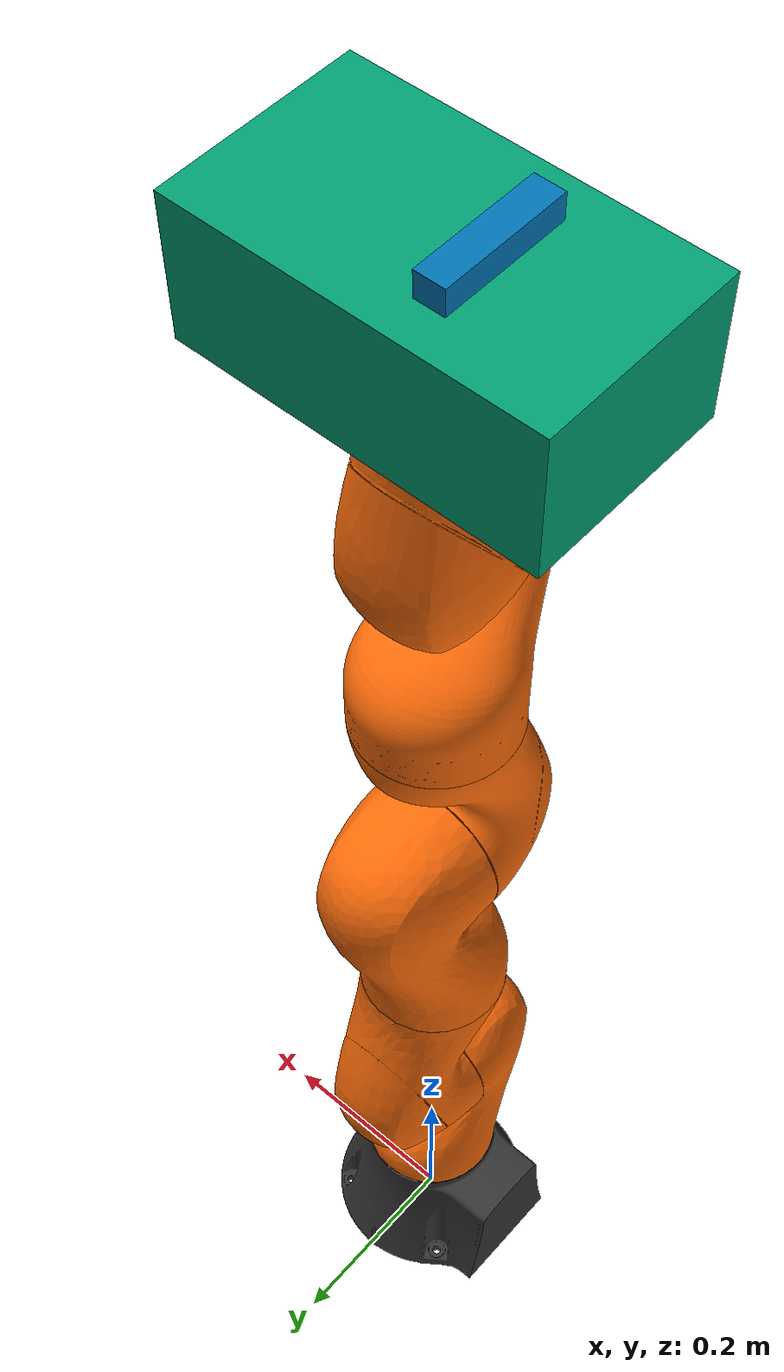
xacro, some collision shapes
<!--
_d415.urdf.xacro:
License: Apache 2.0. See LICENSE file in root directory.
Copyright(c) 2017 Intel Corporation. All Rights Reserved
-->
<?xml version="1.0"?>
<robot name="iiwa7" xmlns:xacro="http://www.ros.org/wiki/xacro">
  <xacro:property name="pi" value="3.1415926535897931"/>

  <!-- Import Rviz colors -->
  <xacro:include filename="$(find iiwa_description)/urdf/materials.xacro" />
  <!--Import the lbr iiwa macro -->
  <xacro:include filename="$(find iiwa_description)/urdf/iiwa7.xacro"/>
  <xacro:include filename="$(find tf_virtual)/urdf/_d415.urdf.xacro"/>

  <xacro:arg name="hardware_interface" default="PositionJointInterface"/>
  <xacro:arg name="robot_name" default="iiwa"/>
  <xacro:arg name="origin_xyz" default="0 0 0"/>
  <xacro:arg name="origin_rpy" default="0 0 0"/>

  <!-- Fix to world just for testing -->
  <link name="world"/>

  <!--iiwa-->
  <xacro:iiwa7 hardware_interface="$(arg hardware_interface)" robot_name="$(arg robot_name)" parent="world">
    <origin xyz="$(arg origin_xyz)" rpy="$(arg origin_rpy)" />
  </xacro:iiwa7>

<link name="toolbox">
  <visual>
    <geometry>
      <box size="0.280 0.160 0.107"/>
    </geometry>
  </visual>
  <collision>
  <geometry>
      <box size="0.280 0.160 0.107"/>
    </geometry>
    </collision>
</link>

<joint name="toolbox_joint" type="fixed">
  <origin xyz="0 0 0.0475" rpy="0 0 0"/>
  <parent link="iiwa_link_ee"/>
  <child link="toolbox" />
</joint>

  <xacro:sensor_d415 parent="$(arg robot_name)_link_7">
    <origin xyz="-0.045 0 0.155" rpy="${pi} -${pi/2} 0"/>
  </xacro:sensor_d415>

</robot>

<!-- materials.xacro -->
<robot>

  <material name="Black">
    <color rgba="0.0 0.0 0.0 1.0"/>
  </material>

  <material name="Blue">
    <color rgba="0.0 0.0 0.8 1.0"/>
  </material>

  <material name="Green">
    <color rgba="0.0 0.8 0.0 1.0"/>
  </material>

  <material name="Grey">
    <color rgba="0.2 0.2 0.2 1.0"/>
  </material>

  <material name="Orange">
    <color rgba="${255/255} ${108/255} ${10/255} 1.0"/>
  </material>

  <material name="Brown">
    <color rgba="${222/255} ${207/255} ${195/255} 1.0"/>
  </material>

  <material name="Red">
    <color rgba="0.8 0.0 0.0 1.0"/>
  </material>

  <material name="White">
    <color rgba="1.0 1.0 1.0 1.0"/>
  </material>

</robot>

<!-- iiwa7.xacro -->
<robot xmlns:xacro="http://www.ros.org/wiki/xacro">

  <!-- Import all Gazebo-customization elements, including Gazebo colors -->
  <xacro:include filename="$(find iiwa_description)/urdf/iiwa.gazebo.xacro" />
  <!-- Import Transmissions -->
  <xacro:include filename="$(find iiwa_description)/urdf/iiwa.transmission.xacro" />
  <!-- Include Utilities -->
  <xacro:include filename="$(find iiwa_description)/urdf/utilities.xacro" />

  <!-- some constants -->
  <xacro:property name="safety_controller_k_pos" value="100" />
  <xacro:property name="safety_controller_k_vel" value="2" />
  <xacro:property name="joint_damping" value="0.5" />
  <xacro:property name="max_effort" value="300"/>
  <xacro:property name="max_velocity" value="10"/>

  <xacro:macro name="iiwa7" params="parent hardware_interface robot_name *origin">

    <!--joint between {parent} and link_0-->
    <joint name="${parent}_${robot_name}_joint" type="fixed">
      <xacro:insert_block name="origin"/>
      <parent link="${parent}"/>
      <child link="${robot_name}_link_0"/>
    </joint>

    <link name="${robot_name}_link_0">
      <inertial>
        <origin xyz="-0.1 0 0.07" rpy="0 0 0"/>
        <mass value="5"/>
        <inertia ixx="0.05"  ixy="0"  ixz="0" iyy="0.06" iyz="0" izz="0.03" />
      </inertial>

      <visual>
        <origin xyz="0 0 0" rpy="0 0 0"/>
        <geometry>
          <mesh filename="package://iiwa_description/meshes/iiwa7/visual/link_0.stl"/>
        </geometry>
        <material name="Grey"/>
      </visual>

      <collision>
        <origin xyz="0 0 0" rpy="0 0 0"/>
        <geometry>
          <mesh filename="package://iiwa_description/meshes/iiwa7/collision/link_0.stl"/>
        </geometry>
      </collision>

    </link>

    <!-- joint between link_0 and link_1 -->
    <joint name="${robot_name}_joint_1" type="revolute">
      <parent link="${robot_name}_link_0"/>
      <child link="${robot_name}_link_1"/>
      <origin xyz="0 0 0.15" rpy="0 0 0"/>
      <axis xyz="0 0 1"/>
      <limit lower="${-170 * PI / 180}" upper="${170 * PI / 180}"
             effort="${max_effort}" velocity="${max_velocity}" />
      <safety_controller soft_lower_limit="${-168 * PI / 180}"
                         soft_upper_limit="${168 * PI / 180}"
                         k_position="${safety_controller_k_pos}"
                         k_velocity="${safety_controller_k_vel}"/>
      <dynamics damping="${joint_damping}"/>
    </joint>

    <link name="${robot_name}_link_1">
      <inertial>
        <origin xyz="0 -0.03 0.12" rpy="0 0 0"/>
        <mass value="3.4525"/>
        <inertia ixx="0.02183"  ixy="0"  ixz="0" iyy="0.007703" iyz="-0.003887" izz="0.02083" />
      </inertial>
      <visual>
        <origin xyz="0 0 0.0075" rpy="0 0 0"/>
        <geometry>
          <mesh filename="package://iiwa_description/meshes/iiwa7/visual/link_1.stl"/>
        </geometry>
        <material name="Orange"/>
      </visual>
      <collision>
        <origin xyz="0 0 0.0075" rpy="0 0 0"/>
        <geometry>
          <mesh filename="package://iiwa_description/meshes/iiwa7/collision/link_1.stl"/>
        </geometry>
      </collision>
    </link>

    <joint name="${robot_name}_joint_2" type="revolute">
      <parent link="${robot_name}_link_1"/>
      <child link="${robot_name}_link_2"/>
      <origin xyz="0 0 0.19" rpy="${PI / 2}   0 ${PI}"/>
      <axis xyz="0 0 1"/>
      <limit lower="${-120 * PI / 180}" upper="${120 * PI / 180}"
             effort="${max_effort}" velocity="${max_velocity}" />
      <safety_controller soft_lower_limit="${-118 * PI / 180}"
                         soft_upper_limit="${118 * PI / 180}"
                         k_position="${safety_controller_k_pos}"
                         k_velocity="${safety_controller_k_vel}"/>
      <dynamics damping="${joint_damping}"/>
    </joint>

    <link name="${robot_name}_link_2">
      <inertial>
        <origin xyz="0.0003 0.059 0.042" rpy="0 0 0"/>
        <mass value="3.4821"/>
        <inertia ixx="0.02076"  ixy="0"  ixz="-0.003626" iyy="0.02179" iyz="0" izz="0.00779" />
      </inertial>
      <visual>
        <origin xyz="0 0 0" rpy="0 0 0"/>
        <geometry>
          <mesh filename="package://iiwa_description/meshes/iiwa7/visual/link_2.stl"/>
        </geometry>
        <material name="Orange"/>
      </visual>

      <collision>
        <origin xyz="0 0 0" rpy="0 0 0"/>
        <geometry>
          <mesh filename="package://iiwa_description/meshes/iiwa7/collision/link_2.stl"/>
        </geometry>
      </collision>
    </link>

    <joint name="${robot_name}_joint_3" type="revolute">
      <parent link="${robot_name}_link_2"/>
      <child link="${robot_name}_link_3"/>
      <origin xyz="0 0.21 0" rpy="${PI / 2} 0 ${PI}"/>
      <axis xyz="0 0 1"/>
      <limit lower="${-170 * PI / 180}" upper="${170 * PI / 180}"
             effort="${max_effort}" velocity="${max_velocity}" />
      <safety_controller soft_lower_limit="${-168 * PI / 180}"
                         soft_upper_limit="${168 * PI / 180}"
                         k_position="${safety_controller_k_pos}"
                         k_velocity="${safety_controller_k_vel}"/>
      <dynamics damping="${joint_damping}"/>
    </joint>

    <link name="${robot_name}_link_3">
      <inertial>
        <origin xyz="0 0.03 0.13" rpy="0 0 0"/>
        <mass value="4.05623"/>
        <inertia ixx="0.03204"  ixy="0"  ixz="0" iyy="0.00972" iyz="0.006227" izz="0.03042" />
      </inertial>

      <visual>
        <origin xyz="0 0 -0.026" rpy="0 0 0"/>
        <geometry>
          <mesh filename="package://iiwa_description/meshes/iiwa7/visual/link_3.stl"/>
        </geometry>
        <material name="Orange"/>
      </visual>

      <collision>
        <origin xyz="0 0 -0.026" rpy="0 0 0"/>
        <geometry>
          <mesh filename="package://iiwa_description/meshes/iiwa7/collision/link_3.stl"/>
        </geometry>
      </collision>

    </link>

    <joint name="${robot_name}_joint_4" type="revolute">
      <parent link="${robot_name}_link_3"/>
      <child link="${robot_name}_link_4"/>
      <origin xyz="0 0 0.19" rpy="${PI / 2} 0 0"/>
      <axis xyz="0 0 1"/>
      <limit lower="${-120 * PI / 180}" upper="${120 * PI / 180}"
             effort="${max_effort}" velocity="${max_velocity}" />
      <safety_controller soft_lower_limit="${-118 * PI / 180}"
                         soft_upper_limit="${118 * PI / 180}"
                         k_position="${safety_controller_k_pos}"
                         k_velocity="${safety_controller_k_vel}"/>
      <dynamics damping="${joint_damping}"/>
    </joint>

    <link name="${robot_name}_link_4">
      <inertial>
        <origin xyz="0 0.067 0.034" rpy="0 0 0"/>
        <mass value="3.4822"/>
        <inertia ixx="0.02178"  ixy="0"  ixz="0" iyy="0.02075" iyz="-0.003625" izz="0.007785" />
      </inertial>

      <visual>
        <origin xyz="0 0 0" rpy="0 0 0"/>
        <geometry>
          <mesh filename="package://iiwa_description/meshes/iiwa7/visual/link_4.stl"/>
        </geometry>
        <material name="Orange"/>
      </visual>

      <collision>
        <origin xyz="0 0 0" rpy="0 0 0"/>
        <geometry>
          <mesh filename="package://iiwa_description/meshes/iiwa7/collision/link_4.stl"/>
        </geometry>
      </collision>
    </link>

    <joint name="${robot_name}_joint_5" type="revolute">
      <parent link="${robot_name}_link_4"/>
      <child link="${robot_name}_link_5"/>
      <origin xyz="0 0.21 0" rpy="${-PI / 2} ${PI} 0"/>
      <axis xyz="0 0 1"/>
      <limit lower="${-170 * PI / 180}" upper="${170 * PI / 180}"
             effort="${max_effort}" velocity="${max_velocity}" />
      <safety_controller soft_lower_limit="${-168 * PI / 180}"
                         soft_upper_limit="${168 * PI / 180}"
                         k_position="${safety_controller_k_pos}"
                         k_velocity="${safety_controller_k_vel}"/>
      <dynamics damping="${joint_damping}"/>
    </joint>

    <link name="${robot_name}_link_5">
      <inertial>
        <origin xyz="0.0001 0.021 0.076" rpy="0 0 0"/>
        <mass value="2.1633"/>
        <inertia ixx="0.01287"  ixy="0"  ixz="0" iyy="0.005708" iyz="-0.003946" izz="0.01112" />
      </inertial>

      <visual>
        <origin xyz="0 0 -0.026" rpy="0 0 0"/>
        <geometry>
          <mesh filename="package://iiwa_description/meshes/iiwa7/visual/link_5.stl"/>
        </geometry>
        <material name="Orange"/>
      </visual>

      <collision>
        <origin xyz="0 0 -0.026" rpy="0 0 0"/>
        <geometry>
          <mesh filename="package://iiwa_description/meshes/iiwa7/collision/link_5.stl"/>
        </geometry>
      </collision>
    </link>

    <joint name="${robot_name}_joint_6" type="revolute">
      <parent link="${robot_name}_link_5"/>
      <child link="${robot_name}_link_6"/>
      <origin xyz="0 0.06070 0.19" rpy="${PI / 2} 0 0"/>
      <axis xyz="0 0 1"/>
      <limit lower="${-120 * PI / 180}" upper="${120 * PI / 180}"
             effort="${max_effort}" velocity="${max_velocity}" />
      <safety_controller soft_lower_limit="${-118 * PI / 180}"
                         soft_upper_limit="${118 * PI / 180}"
                         k_position="${safety_controller_k_pos}"
                         k_velocity="${safety_controller_k_vel}"/>
      <dynamics damping="${joint_damping}"/>
    </joint>

    <link name="${robot_name}_link_6">
      <inertial>
        <origin xyz="0 0.0006 0.0004" rpy="0 0 0"/>
        <mass value="2.3466"/>
        <inertia ixx="0.006509"  ixy="0"  ixz="0" iyy="0.006259" iyz="0.00031891" izz="0.004527" />
      </inertial>

      <visual>
        <origin xyz="0 0 0" rpy="0 0 0"/>
        <geometry>
          <mesh filename="package://iiwa_description/meshes/iiwa7/visual/link_6.stl"/>
        </geometry>
        <material name="Orange"/>
      </visual>

      <collision>
        <origin xyz="0 0 0" rpy="0 0 0"/>
        <geometry>
          <mesh filename="package://iiwa_description/meshes/iiwa7/collision/link_6.stl"/>
        </geometry>
      </collision>
    </link>

    <joint name="${robot_name}_joint_7" type="revolute">
      <parent link="${robot_name}_link_6"/>
      <child link="${robot_name}_link_7"/>
      <origin xyz="0 0.081 0.06070" rpy="${- PI / 2} ${PI} 0"/>
      <axis xyz="0 0 1"/>
      <limit lower="${-175 * PI / 180}" upper="${175 * PI / 180}"
             effort="${max_effort}" velocity="${max_velocity}" />
      <safety_controller soft_lower_limit="${-173 * PI / 180}"
                         soft_upper_limit="${173 * PI / 180}"
                         k_position="${safety_controller_k_pos}"
                         k_velocity="${safety_controller_k_vel}"/>
      <dynamics damping="${joint_damping}"/>
    </joint>

    <link name="${robot_name}_link_7">
      <inertial>
        <origin xyz="0 0 0.02" rpy="0 0 0"/>
        <mass value="3.129"/>
        <inertia ixx="0.01464"  ixy="0.0005912"  ixz="0" iyy="0.01465" iyz="0" izz="0.002872" />
      </inertial>

      <visual>
        <origin xyz="0 0 -0.0005" rpy="0 0 0"/>
        <geometry>
          <mesh filename="package://iiwa_description/meshes/iiwa7/visual/link_7.stl"/>
        </geometry>
        <material name="Grey"/>
      </visual>

      <collision>
        <origin xyz="0 0 -0.0005" rpy="0 0 0"/>
        <geometry>
          <mesh filename="package://iiwa_description/meshes/iiwa7/collision/link_7.stl"/>
        </geometry>
      </collision>
    </link>

    <joint name="${robot_name}_joint_ee" type="fixed">
      <parent link="${robot_name}_link_7"/>
      <child link="${robot_name}_link_ee"/>
      <origin xyz="0 0 0.045" rpy="0 0 0"/>
    </joint>

    <link name="${robot_name}_link_ee">
    </link>

    <!--Extensions -->
    <xacro:iiwa_gazebo robot_name="${robot_name}" />
    <xacro:iiwa_transmission hardware_interface="${hardware_interface}"/>

  </xacro:macro>

</robot>

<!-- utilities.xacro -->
<robot name="iiwa" xmlns:xacro="http://www.ros.org/wiki/xacro">

  <xacro:property name="PI" value="3.1415926535897931"/>

<!-- The following macros are adapted from the LWR 4 definitions of the RCPRG - https://github.com/RCPRG-ros-pkg/lwr_robot -->
  <!--Little helper macros to define the inertia matrix needed for links.-->
  <!--Cuboid-->
  <xacro:macro name="cuboid_inertia" params="width height length mass">
    <inertia ixx="${mass * (height * height + length * length) / 12)}"
             iyy="${mass * (width * width + length * length) / 12)}"
             izz="${mass * (width * width + height * height) / 12)}"
             ixy="0" iyz="0" ixz="0"/>
  </xacro:macro>

  <!--Cylinder: length is along the y-axis! -->
  <xacro:macro name="cylinder_inertia" params="radius length mass">
    <inertia ixx="${mass * (3 * radius * radius + length * length) / 12)}"
             iyy="${mass * radius* radius / 2)}"
             izz="${mass * (3 * radius * radius + length * length) / 12)}"
             ixy="0" iyz="0" ixz="0"/>
  </xacro:macro>

</robot>

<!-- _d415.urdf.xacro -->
<robot name="sensor_d415" xmlns:xacro="http://ros.org/wiki/xacro">
  <!-- Includes -->
  <xacro:include filename="$(find realsense2_description)/urdf/_materials.urdf.xacro" />
  <xacro:include filename="$(find realsense2_description)/urdf/_usb_plug.urdf.xacro" />

  <xacro:macro name="sensor_d415" params="parent *origin  name:=camera  use_nominal_extrinsics:=false">
    <xacro:property name="M_PI" value="3.1415926535897931" />

    <!-- The following values are approximate, and the camera node
     publishing TF values with actual calibrated camera extrinsic values -->
    <xacro:property name="d415_cam_depth_to_infra1_offset" value="0.0"/>
    <xacro:property name="d415_cam_depth_to_infra2_offset" value="-0.055"/>
    <xacro:property name="d415_cam_depth_to_color_offset" value="0.015"/>

    <!-- The following values model the aluminum peripherial case for the
  	d415 camera, with the camera joint represented by the actual
  	peripherial camera tripod mount -->
    <xacro:property name="d415_cam_width" value="0.099"/>
    <xacro:property name="d415_cam_height" value="0.023"/>
    <xacro:property name="d415_cam_depth" value="0.02005"/>
    <xacro:property name="d415_cam_mount_from_center_offset" value="0.00987"/>

    <!-- The following offset is relative the the physical d415 camera peripherial
  	camera tripod mount -->
    <xacro:property name="d415_cam_depth_px" value="${d415_cam_mount_from_center_offset}"/>
    <xacro:property name="d415_cam_depth_py" value="0.020"/>
    <xacro:property name="d415_cam_depth_pz" value="${d415_cam_height/2}"/>

    <!-- camera body, with origin at bottom screw mount -->
    <joint name="${name}_joint" type="fixed">
      <xacro:insert_block name="origin" />
      <parent link="${parent}"/>
      <child link="${name}_bottom_screw_frame" />
    </joint>

    <link name="${name}_bottom_screw_frame"/>

    <joint name="${name}_link_joint" type="fixed">
      <origin xyz="0 ${d415_cam_depth_py} ${d415_cam_depth_pz}" rpy="0 0 0"/>
      <parent link="${name}_bottom_screw_frame"/>
      <child link="${name}_link" />
    </joint>

    <link name="${name}_link">
      <visual>
      <origin xyz="${d415_cam_mount_from_center_offset} ${-d415_cam_depth_py} 0" rpy="${M_PI/2} 0 ${M_PI/2}"/>
        <geometry>
	         <mesh filename="package://realsense2_description/meshes/d415.stl" />
        </geometry>
        <material name="aluminum"/>
      </visual>
      <collision>
        <origin xyz="0 ${-d415_cam_depth_py} 0" rpy="0 0 0"/>
        <geometry>
        <box size="${d415_cam_depth} ${d415_cam_width} ${d415_cam_height}"/>
        </geometry>
      </collision>
      <inertial>
        <!-- The following are not reliable values, and should not be used for modeling -->
        <mass value="0.564" />
        <origin xyz="0 0 0" />
        <inertia ixx="0.003881243" ixy="0.0" ixz="0.0" iyy="0.000498940" iyz="0.0" izz="0.003879257" />
      </inertial>
    </link>

    <!-- Use the nominal extrinsics between camera frames if the calibrated extrinsics aren't being published. e.g. running the device in simulation  -->
    <xacro:if value="${use_nominal_extrinsics}">
      <!-- camera depth joints and links -->
      <joint name="${name}_depth_joint" type="fixed">
        <origin xyz="0 0 0" rpy="0 0 0"/>
        <parent link="${name}_link"/>
        <child link="${name}_depth_frame" />
      </joint>
      <link name="${name}_depth_frame"/>

      <joint name="${name}_depth_optical_joint" type="fixed">
        <origin xyz="0 0 0" rpy="${-M_PI/2} 0 ${-M_PI/2}" />
        <parent link="${name}_depth_frame" />
        <child link="${name}_depth_optical_frame" />
      </joint>
      <link name="${name}_depth_optical_frame"/>

      <!-- camera left IR joints and links -->
      <joint name="${name}_infra1_joint" type="fixed">
        <origin xyz="0 ${d415_cam_depth_to_infra1_offset} 0" rpy="0 0 0" />
        <parent link="${name}_link" />
        <child link="${name}_infra1_frame" />
      </joint>
      <link name="${name}_infra1_frame"/>

      <joint name="${name}_infra1_optical_joint" type="fixed">
        <origin xyz="0 0 0" rpy="${-M_PI/2} 0 ${-M_PI/2}" />
        <parent link="${name}_infra1_frame" />
        <child link="${name}_infra1_optical_frame" />
      </joint>
      <link name="${name}_infra1_optical_frame"/>

      <!-- camera right IR joints and links -->
      <joint name="${name}_infra2_joint" type="fixed">
        <origin xyz="0 ${d415_cam_depth_to_infra2_offset} 0" rpy="0 0 0" />
        <parent link="${name}_link" />
        <child link="${name}_infra2_frame" />
      </joint>
      <link name="${name}_infra2_frame"/>

      <joint name="${name}_infra2_optical_joint" type="fixed">
        <origin xyz="0 0 0" rpy="${-M_PI/2} 0 ${-M_PI/2}" />
        <parent link="${name}_infra2_frame" />
        <child link="${name}_infra2_optical_frame" />
      </joint>
      <link name="${name}_infra2_optical_frame"/>

      <!-- camera color joints and links -->
      <joint name="${name}_color_joint" type="fixed">
        <origin xyz="0 ${d415_cam_depth_to_color_offset} 0" rpy="0 0 0" />
        <parent link="${name}_link" />
        <child link="${name}_color_frame" />
      </joint>
      <link name="${name}_color_frame"/>

      <joint name="${name}_color_optical_joint" type="fixed">
        <origin xyz="0 0 0" rpy="${-M_PI/2} 0 ${-M_PI/2}" />
        <parent link="${name}_color_frame" />
        <child link="${name}_color_optical_frame" />
      </joint>
      <link name="${name}_color_optical_frame"/>
    </xacro:if>

  </xacro:macro>
</robot>
